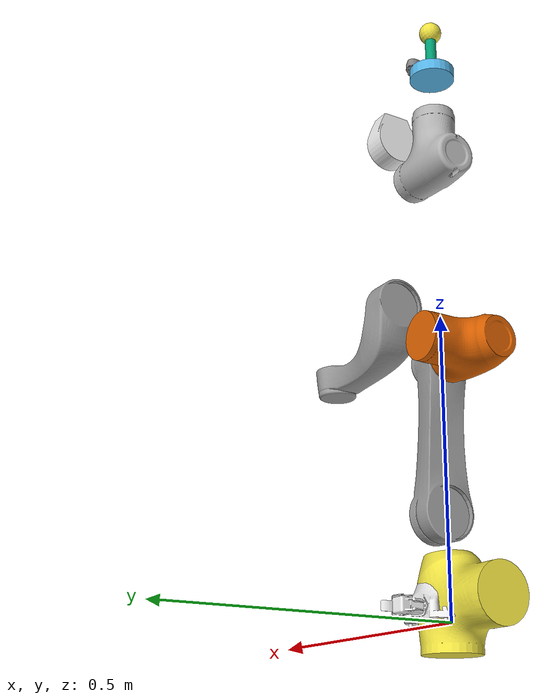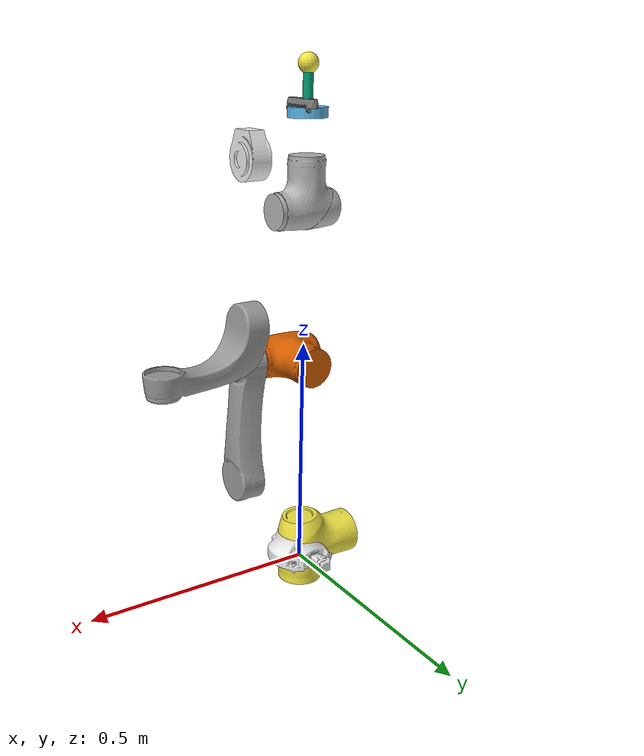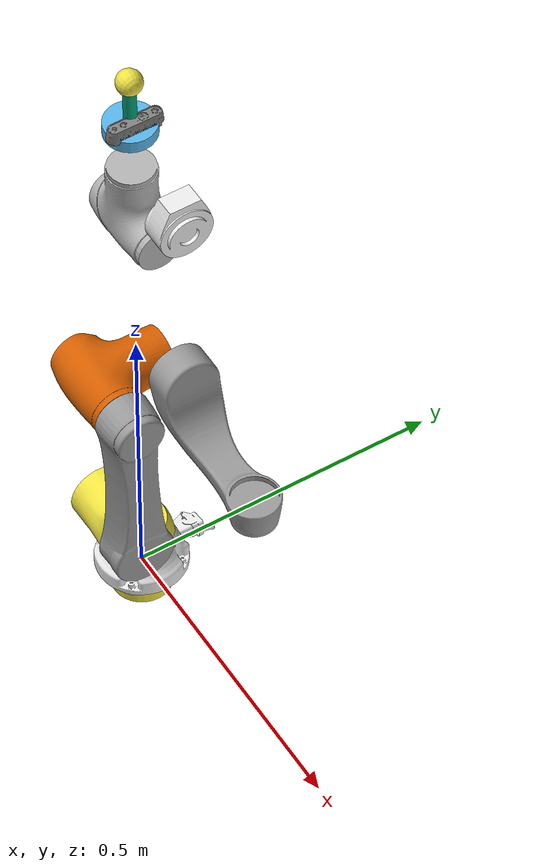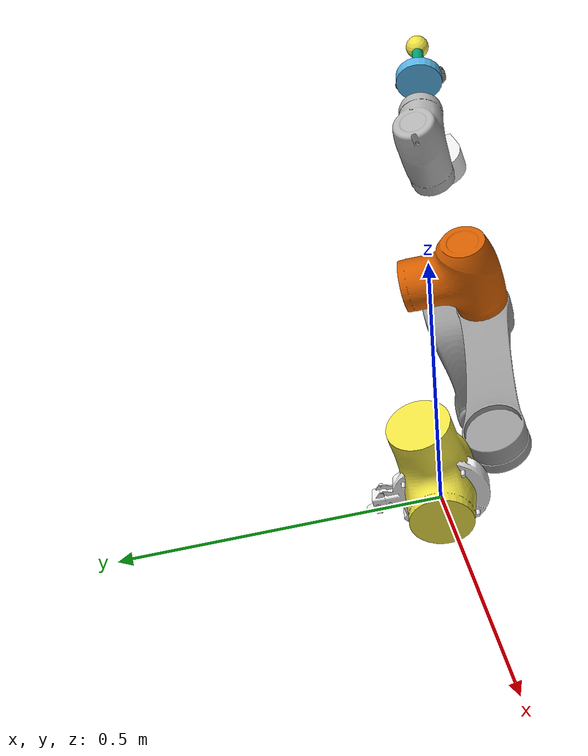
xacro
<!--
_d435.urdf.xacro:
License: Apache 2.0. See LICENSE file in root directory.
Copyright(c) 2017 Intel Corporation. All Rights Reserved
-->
<robot
  name="elfin3" xmlns:xacro="http://www.ros.org/wiki/xacro">

  <xacro:include filename="$(find elfin_description)/urdf/materials.xacro" />

  <xacro:include filename="$(find elfin_description)/urdf/_d435.urdf.xacro"/>

  <xacro:include filename="$(find elfin_description)/urdf/elfin_robot_experiment1.gazebo" />

  <xacro:include filename="$(find elfin_description)/urdf/elfin_transmission_experiment1.xacro" />

  <xacro:property name="PI" value="3.1415926535897931"/>

  <link name="world"/>

  <joint name="world_base" type="fixed">
    <origin
      xyz="0 0 0"
      rpy="0 0 0" />
    <parent
      link="world" />
    <child
      link="elfin_base_link" />
  </joint>

  <link name="elfin_base_link"/>

  <joint name="elfin_base_joint" type="fixed">
    <origin
      xyz="0 0 0"
      rpy="0 0 ${PI/2}" />
    <parent
      link="elfin_base_link" />
    <child
      link="elfin_base" />
  </joint>

  <link
    name="elfin_base">
    <inertial>
      <origin
        xyz="-0.0319402056221453 0.427120668618383 -5.39351164605318E-06"
        rpy="0 0 0" />
      <mass
        value="4.3052612459755" />
      <inertia
        ixx="0.291480854811486"
        ixy="-0.00222433961096429"
        ixz="-2.01923964457691E-06"
        iyy="0.0113685309214344"
        iyz="-3.62155285906403E-06"
        izz="0.298007263296196" />
    </inertial>
    <visual>
      <origin
        xyz="0 0 0"
        rpy="0 0 0" />
      <geometry>
        <mesh
          filename="package://elfin_description/meshes/elfin3/elfin_base.STL" />
      </geometry>
      <material
        name="metal_white"/>
    </visual>
    <collision>
      <origin
        xyz="0 0 0"
        rpy="0 0 0" />
      <geometry>
        <mesh
          filename="package://elfin_description/meshes/elfin3/elfin_base.STL" />
      </geometry>
    </collision>
  </link>
  <link
    name="elfin_link1">
    <inertial>
      <origin
        xyz="-0.0192918165822649 0.120142940373248 -9.33059379656128E-06"
        rpy="0 0 0" />
      <mass
        value="1.52637984956046" />
      <inertia
        ixx="0.00527544044696735"
        ixy="0.00123465778378514"
        ixz="-6.71312813911233E-07"
        iyy="0.00317642212936588"
        iyz="-3.23660070050034E-07"
        izz="0.00651212770034193" />
    </inertial>
    <visual>
      <origin
        xyz="0 0 0"
        rpy="0 0 0" />
      <geometry>
        <mesh
          filename="package://elfin_description/meshes/elfin3/elfin_link1.STL" />
      </geometry>
      <material
        name="metal"/>
    </visual>
    <collision>
      <origin
        xyz="0 0 0"
        rpy="0 0 0" />
      <geometry>
        <mesh
          filename="package://elfin_description/meshes/elfin3/elfin_link1.STL" />
      </geometry>
    </collision>
  </link>
  <joint
    name="elfin_joint1"
    type="revolute">
    <origin
      xyz="0 0 0.031"
      rpy="${PI/2} 0 0" />
    <parent
      link="elfin_base" />
    <child
      link="elfin_link1" />
    <axis
      xyz="0 1 0" />
    <dynamics
      damping="1"
      friction="1" />
    <limit
      lower="-3.14"
      upper="3.14"
      effort="120"
      velocity="1.57" />
  </joint>
  <link
    name="elfin_link2">
    <inertial>
      <origin
        xyz="-0.036466516774824 0.121897297057332 -2.81161718183357E-05"
        rpy="0 0 0" />
      <mass
        value="0.519454683951505" />
      <inertia
        ixx="0.00565995615696724"
        ixy="-0.000264286704227211"
        ixz="9.00238413174917E-08"
        iyy="0.000537503501646015"
        iyz="2.30075042384658E-06"
        izz="0.00546582402574428" />
    </inertial>
    <visual>
      <origin
        xyz="0 0 0"
        rpy="0 0 0" />
      <geometry>
        <mesh
          filename="package://elfin_description/meshes/elfin3/elfin_link2.STL" />
      </geometry>
      <material
        name="metal_grey"/>
    </visual>
    <collision>
      <origin
        xyz="0 0 0"
        rpy="0 0 0" />
      <geometry>
        <mesh
          filename="package://elfin_description/meshes/elfin3/elfin_link2.STL" />
      </geometry>
    </collision>
  </link>
  <joint
    name="elfin_joint2"
    type="revolute">
    <origin
      xyz="-0.068808 0.1615 0"
      rpy="0 0 0" />
    <parent
      link="elfin_link1" />
    <child
      link="elfin_link2" />
    <axis
      xyz="-1 0 0" />
    <dynamics
      damping="1"
      friction="1" />
    <limit
      lower="-2.35"
      upper="2.35"
      effort="120"
      velocity="1.57" />
  </joint>
  <link
    name="elfin_link3">
    <inertial>
      <origin
        xyz="0.0512991448419209 -0.0377654897323815 -7.04730066125333E-06"
        rpy="0 0 0" />
      <mass
        value="1.07922053966635" />
      <inertia
        ixx="0.00298738624023049"
        ixy="0.000725824493179576"
        ixz="4.96115488717236E-07"
        iyy="0.00183400941739145"
        iyz="-2.66433909735348E-07"
        izz="0.00375395532323906" />
    </inertial>
    <visual>
      <origin
        xyz="0 0 0"
        rpy="0 0 0" />
      <geometry>
        <mesh
          filename="package://elfin_description/meshes/elfin3/elfin_link3.STL" />
      </geometry>
      <material
        name="metal"/>
    </visual>
    <collision>
      <origin
        xyz="0 0 0"
        rpy="0 0 0" />
      <geometry>
        <mesh
          filename="package://elfin_description/meshes/elfin3/elfin_link3.STL" />
      </geometry>
    </collision>
  </link>
  <joint
    name="elfin_joint3"
    type="revolute">
    <origin
      xyz="0 0.266 0"
      rpy="${-PI} 0 0" />
    <parent
      link="elfin_link2" />
    <child
      link="elfin_link3" />
    <axis
      xyz="1 0 0" />
    <dynamics
      damping="1"
      friction="1" />
    <limit
      lower="-2.61"
      upper="2.61"
      effort="120"
      velocity="1.57" />
  </joint>
  <link
    name="elfin_link4">
    <inertial>
      <origin
        xyz="-0.0583601900884385 0.100119219162888 -3.33183498268088E-07"
        rpy="0 0 0" />
      <mass
        value="0.369677539276185" />
      <inertia
        ixx="0.00237292271100579"
        ixy="0.000824081879058636"
        ixz="-8.45848544546041E-09"
        iyy="0.000956009074525509"
        iyz="-3.93294162811061E-09"
        izz="0.00283923133217817" />
    </inertial>
    <visual>
      <origin
        xyz="0 0 0"
        rpy="0 0 0" />
      <geometry>
        <mesh
          filename="package://elfin_description/meshes/elfin3/elfin_link4.STL" />
      </geometry>
      <material
        name="metal_grey"/>
    </visual>
    <collision>
      <origin
        xyz="0 0 0"
        rpy="0 0 0" />
      <geometry>
        <mesh
          filename="package://elfin_description/meshes/elfin3/elfin_link4.STL" />
      </geometry>
    </collision>
  </link>
  <joint
    name="elfin_joint4"
    type="revolute">
    <origin
      xyz="0.068808 -0.10523 0"
      rpy="${PI} 0 0" />
    <parent
      link="elfin_link3" />
    <child
      link="elfin_link4" />
    <axis
      xyz="0 1 0" />
    <dynamics
      damping="1"
      friction="1" />
    <limit
      lower="-3.14"
      upper="3.14"
      effort="120"
      velocity="1.57" />
  </joint>
  <link
    name="elfin_link5">
    <inertial>
      <origin
        xyz="-0.0159268625326372 -0.0365461558991834 2.29158666616884E-06"
        rpy="0 0 0" />
      <mass
        value="0.81052865799498" />
      <inertia
        ixx="0.00195203104787827"
        ixy="0.000475249185078403"
        ixz="-4.08714933153791E-08"
        iyy="0.0011361781195507"
        iyz="1.7320616235908E-08"
        izz="0.00247459893149932" />
    </inertial>
    <visual>
      <origin
        xyz="0 0 0"
        rpy="0 0 0" />
      <geometry>
        <mesh
          filename="package://elfin_description/meshes/elfin3/elfin_link5.STL" />
      </geometry>
      <material
        name="metal"/>
    </visual>
    <collision>
      <origin
        xyz="0 0 0"
        rpy="0 0 0" />
      <geometry>
        <mesh
          filename="package://elfin_description/meshes/elfin3/elfin_link5.STL" />
      </geometry>
    </collision>
  </link>
  <joint
    name="elfin_joint5"
    type="revolute">
    <origin
      xyz="0 0.21877 0"
      rpy="${-PI} 0 0" />
    <parent
      link="elfin_link4" />
    <child
      link="elfin_link5" />
    <axis
      xyz="1 0 0" />
    <dynamics
      damping="1"
      friction="1" />
    <limit
      lower="-2.56"
      upper="2.56"
      effort="120"
      velocity="1.57" />
  </joint>
  <link
    name="elfin_link6">
    <inertial>
      <origin
        xyz="0.0219175619250529 0.461879324434722 -0.0232335370431645"
        rpy="0 0 0" />
      <mass
        value="4.3052612459755" />
      <inertia
        ixx="0.294935032119192"
        ixy="-0.0015239945221609"
        ixz="0.0032576119002927"
        iyy="0.0113685309214282"
        iyz="0.00162022853851308"
        izz="0.294553085988403" />
    </inertial>
    <visual>
      <origin
        xyz="0 0 0"
        rpy="0 0 0" />
      <geometry>
        <mesh
          filename="package://elfin_description/meshes/elfin3/elfin_link6.STL" />
      </geometry>
      <material
        name="metal_white"/>
    </visual>
    <collision>
      <origin
        xyz="0 0 0"
        rpy="0 0 0" />
      <geometry>
        <mesh
          filename="package://elfin_description/meshes/elfin3/elfin_link6.STL" />
      </geometry>
    </collision>
  </link>
  <joint
    name="elfin_joint6"
    type="revolute">
    <origin
      xyz="0 -0.1065 0"
      rpy="${-PI} 0 ${-PI}" />
    <parent
      link="elfin_link5" />
    <child
      link="elfin_link6" />
    <axis
      xyz="0 -1 0" />
    <dynamics
      damping="1"
      friction="1" />
    <limit
      lower="-3.14"
      upper="3.14"
      effort="120"
      velocity="1.57" />
  </joint>

  <link name="elfin_ft_sensor_link">
    <collision>
      <origin xyz="0 0 0" rpy="${PI/2} 0 0"/>
      <geometry>
        <cylinder length="0.02" radius="0.04"/>
      </geometry>
    </collision>

    <visual>
      <origin xyz="0 0 0" rpy="${PI/2} 0 0" />
      <geometry>
        <cylinder length="0.02" radius="0.04"/>
      </geometry>
    </visual>

    <inertial>
      <mass value="0.01" />
      <origin xyz="0 0 0" rpy="0 0 0"/>
      <inertia ixx="0.01" ixy="0" ixz="0" iyy="0.01" iyz="0" izz="0.01" />
    </inertial>
  </link>

  <joint name="ft_sensor_joint" type="revolute">
    <parent link="elfin_link6"/>
    <child link="elfin_ft_sensor_link"/>
    <origin xyz="0 -0.08 0" rpy="0 0 0" />
    <axis xyz="0 -1 0"/>
    <limit
      lower="0.0"
      upper="0.0"
      effort="0.0"
      velocity="0.0" />
  </joint>

  <link name="elfin_tool">
    <collision>
      <origin xyz="0 0 0" rpy="${PI/2} 0 0"/>
      <geometry>
        <cylinder length="0.08" radius="0.01"/>
      </geometry>
    </collision>

    <visual>
      <origin xyz="0 0 0" rpy="${PI/2} 0 0" />
      <geometry>
        <cylinder length="0.08" radius="0.01"/>
      </geometry>
    </visual>

    <inertial>
      <mass value="0.01" />
      <origin xyz="0 0 0" rpy="0 0 0"/>
      <inertia ixx="0.01" ixy="0" ixz="0" iyy="0.01" iyz="0" izz="0.01" />
    </inertial>
  </link>

  <joint name="tool_joint" type="fixed">
    <parent link="elfin_ft_sensor_link"/>
    <child link="elfin_tool"/>
    <origin xyz="0 -0.05 0" rpy="0 0 0" />
  </joint>

  <link name="elfin_tool_ball">
    <collision>
      <origin xyz="0 0 0" rpy="0 0 0"/>
      <geometry>
        <sphere radius="0.02"/>
      </geometry>
    </collision>

    <visual>
      <origin xyz="0 0 0" rpy="0 0 0" />
      <geometry>
        <sphere radius="0.02"/>
      </geometry>
    </visual>

    <inertial>
      <mass value="0.01" />
      <origin xyz="0 0 0" rpy="0 0 0"/>
      <inertia ixx="0.01" ixy="0" ixz="0" iyy="0.01" iyz="0" izz="0.01" />
    </inertial>
  </link>

  <joint name="tool_ball_joint" type="fixed">
    <parent link="elfin_tool"/>
    <child link="elfin_tool_ball"/>
    <origin xyz="0 -0.04 0" rpy="0 0 0" />
  </joint>

  <xacro:sensor_d435 name="relasense" parent="elfin_link6">
    <origin xyz="0.0 -0.091 0.0" rpy="0 0 ${-PI/2}"/>
  </xacro:sensor_d435>

</robot>

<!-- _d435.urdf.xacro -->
<robot name="sensor_d435" xmlns:xacro="http://ros.org/wiki/xacro">
  <!--File includes-->

  <xacro:include filename="$(find elfin_description)/urdf/_d435.gazebo.xacro"/>

  <xacro:macro name="sensor_d435" params="name:=camera topics_ns:=camera parent *origin">
    <xacro:property name="M_PI" value="3.1415926535897931" />

    <!-- The following values are approximate, and the camera node
     publishing TF values with actual calibrated camera extrinsic values -->
    <xacro:property name="d435_cam_depth_to_left_ir_offset" value="0.0"/>
    <xacro:property name="d435_cam_depth_to_right_ir_offset" value="-0.050"/>
    <xacro:property name="d435_cam_depth_to_color_offset" value="0.015"/>

    <!-- The following values model the aluminum peripherial case for the
  	D435 camera, with the camera joint represented by the actual
  	peripherial camera tripod mount -->
    <xacro:property name="d435_cam_width" value="0.090"/>
    <xacro:property name="d435_cam_height" value="0.025"/>
    <xacro:property name="d435_cam_depth" value="0.02505"/>
    <xacro:property name="d435_cam_mount_from_center_offset" value="0.0149"/>

    <!-- The following offset is relative the the physical D435 camera peripherial
  	camera tripod mount -->
    <xacro:property name="d435_cam_depth_px" value="${d435_cam_mount_from_center_offset}"/>
    <xacro:property name="d435_cam_depth_py" value="0.0175"/>
    <xacro:property name="d435_cam_depth_pz" value="${d435_cam_height/2}"/>

    <material name="${name}_aluminum">
	  <color rgba="0.5 0.5 0.5 1"/>
    </material>

    <!-- camera body, with origin at bottom screw mount -->
    <joint name="${name}_joint" type="fixed">
      <xacro:insert_block name="origin" />
      <parent link="${parent}"/>
      <child link="${name}_bottom_screw_frame" />
    </joint>
    <link name="${name}_bottom_screw_frame"/>

    <joint name="${name}_link_joint" type="fixed">
      <origin xyz="0 ${d435_cam_depth_py} ${d435_cam_depth_pz}" rpy="0 0 0"/>
      <parent link="${name}_bottom_screw_frame"/>
      <child link="${name}_link" />
    </joint>

    <link name="${name}_link">
      <visual>
      <origin xyz="${d435_cam_mount_from_center_offset} ${-d435_cam_depth_py} 0" rpy="${M_PI/2} 0 ${M_PI/2}"/>
        <geometry>
          <mesh filename="package://realsense2_description/meshes/d435.dae" />
        </geometry>
        <material name="${name}_aluminum"/>
      </visual>
      <collision>
        <origin xyz="0 ${-d435_cam_depth_py} 0" rpy="0 0 0"/>
        <geometry>
        <box size="${d435_cam_depth} ${d435_cam_width} ${d435_cam_height}"/>
        </geometry>
      </collision>
      <inertial>
        <!-- The following are not reliable values, and should not be used for modeling -->
        <mass value="0.564" />
        <origin xyz="0 0 0" />
        <inertia ixx="0.003881243" ixy="0.0" ixz="0.0" iyy="0.000498940" iyz="0.0" izz="0.003879257" />
      </inertial>
    </link>

    <!-- camera depth joints and links -->
    <joint name="${name}_depth_joint" type="fixed">
      <origin xyz="0 0 0" rpy="0 0 0"/>
      <parent link="${name}_link"/>
      <child link="${name}_depth_frame" />
    </joint>
    <link name="${name}_depth_frame"/>

    <joint name="${name}_depth_optical_joint" type="fixed">
      <origin xyz="0 0 0" rpy="${-M_PI/2} 0 ${-M_PI/2}" />
      <parent link="${name}_depth_frame" />
      <child link="${name}_depth_optical_frame" />
    </joint>
    <link name="${name}_depth_optical_frame"/>

    <!-- camera left IR joints and links -->
    <joint name="${name}_left_ir_joint" type="fixed">
      <origin xyz="0 ${d435_cam_depth_to_left_ir_offset} 0" rpy="0 0 0" />
      <parent link="${name}_depth_frame" />
      <child link="${name}_left_ir_frame" />
    </joint>
    <link name="${name}_left_ir_frame"/>

    <joint name="${name}_left_ir_optical_joint" type="fixed">
      <origin xyz="0 0 0" rpy="${-M_PI/2} 0 ${-M_PI/2}" />
      <parent link="${name}_left_ir_frame" />
      <child link="${name}_left_ir_optical_frame" />
    </joint>
    <link name="${name}_left_ir_optical_frame"/>

    <!-- camera right IR joints and links -->
    <joint name="${name}_right_ir_joint" type="fixed">
      <origin xyz="0 ${d435_cam_depth_to_right_ir_offset} 0" rpy="0 0 0" />
      <parent link="${name}_depth_frame" />
      <child link="${name}_right_ir_frame" />
    </joint>
    <link name="${name}_right_ir_frame"/>

    <joint name="${name}_right_ir_optical_joint" type="fixed">
      <origin xyz="0 0 0" rpy="${-M_PI/2} 0 ${-M_PI/2}" />
      <parent link="${name}_right_ir_frame" />
      <child link="${name}_right_ir_optical_frame" />
    </joint>
    <link name="${name}_right_ir_optical_frame"/>

    <!-- camera color joints and links -->
    <joint name="${name}_color_joint" type="fixed">
      <origin xyz="0 ${d435_cam_depth_to_color_offset} 0" rpy="0 0 0" />
      <parent link="${name}_depth_frame" />
      <child link="${name}_color_frame" />
    </joint>
    <link name="${name}_color_frame"/>

    <joint name="${name}_color_optical_joint" type="fixed">
      <origin xyz="0 0 0" rpy="${-M_PI/2} 0 ${-M_PI/2}" />
      <parent link="${name}_color_frame" />
      <child link="${name}_color_optical_frame" />
    </joint>
    <link name="${name}_color_optical_frame"/>

    <!-- Realsense Gazebo Plugin -->
    <xacro:gazebo_d435 camera_name="${name}" reference_link="${name}_link" topics_ns="${topics_ns}" depth_optical_frame="${name}_depth_optical_frame" color_optical_frame="${name}_color_optical_frame" infrared1_optical_frame="${name}_left_ir_optical_frame" infrared2_optical_frame="${name}_right_ir_optical_frame"/>

  </xacro:macro>
</robot>
